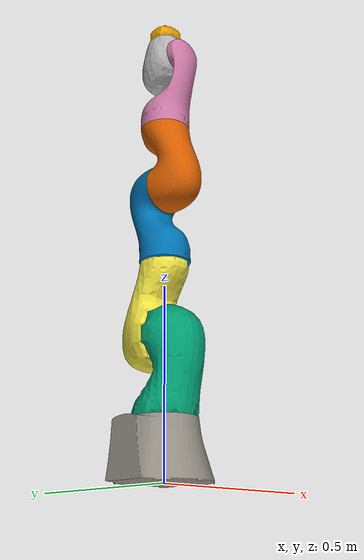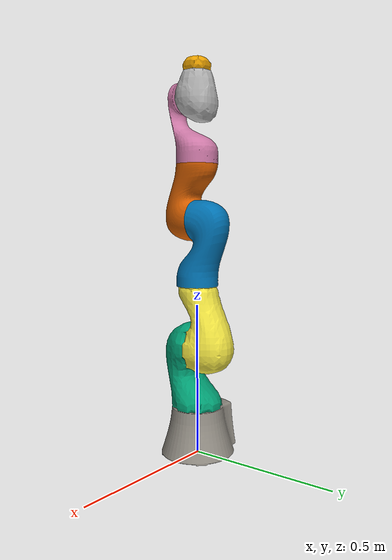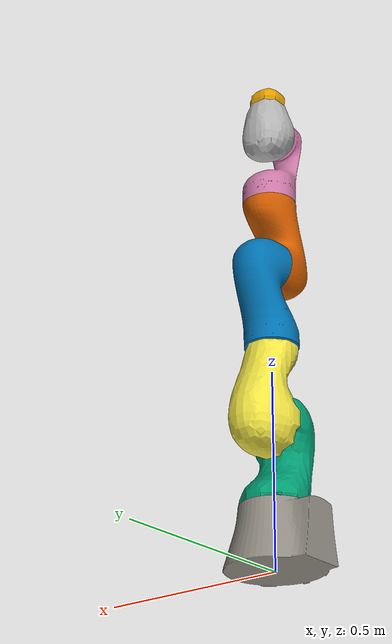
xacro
<?xml version="1.0"?>
<robot xmlns:xacro="http://www.ros.org/wiki/xacro" name="lbr_iiwa14_r820">
  <!-- Import iiwa macro files  -->
  <xacro:include filename="$(find kuka_lbr_iiwa_support)/urdf/lbr_iiwa14_r820_macro.xacro"/>
  <xacro:include filename="$(find kuka_lbr_iiwa_support)/urdf/lbr_iiwa_ros2_control_macro.xacro"/>
  <!-- Read additional arguments  -->
  <xacro:arg name="controller_ip" default="0.0.0.0"/>
  <xacro:arg name="client_ip" default="0.0.0.0"/>
  <xacro:arg name="client_port" default="30200"/>
  <xacro:arg name="mode" default="hardware"/>
  <xacro:arg name="roundtrip_time" default="0"/>
  <xacro:arg name="x" default="0"/>
  <xacro:arg name="y" default="0"/>
  <xacro:arg name="z" default="0"/>
  <xacro:arg name="roll" default="0"/>
  <xacro:arg name="pitch" default="0"/>
  <xacro:arg name="yaw" default="0"/>
  <xacro:arg name="prefix" default=""/>
  <xacro:arg name="is_async" default="false"/>
  <xacro:arg name="async_thread_priority" default="69"/>
  <xacro:arg name="async_affinity" default="[]"/>
  <xacro:arg name="scheduling_policy" default="detached"/>
  <xacro:kuka_lbr_iiwa_ros2_control name="$(arg prefix)lbr_iiwa14_r820" prefix="$(arg prefix)" io_access="false" mode="$(arg mode)" roundtrip_time="$(arg roundtrip_time)" controller_ip="$(arg controller_ip)" client_ip="$(arg client_ip)" client_port="$(arg client_port)" is_async="$(arg is_async)" scheduling_policy="$(arg scheduling_policy)" async_thread_priority="$(arg async_thread_priority)" async_affinity="$(arg async_affinity)">
    <ext_axes_ros2_control_joints/>
  </xacro:kuka_lbr_iiwa_ros2_control>
  <!-- world link -->
  <link name="world"/>
  <!-- robot links, joints -->
  <xacro:kuka_lbr_iiwa14_r820_robot prefix="$(arg prefix)" package_name="kuka_lbr_iiwa_support"/>
  <!-- default world - base_link joint -->
  <joint name="$(arg prefix)world-base_link" type="fixed">
    <parent link="world"/>
    <child link="$(arg prefix)base_link"/>
    <origin xyz="$(arg x) $(arg y) $(arg z)" rpy="$(arg roll) $(arg pitch) $(arg yaw)"/>
  </joint>
</robot>

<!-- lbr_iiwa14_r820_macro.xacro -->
<robot xmlns:xacro="http://wiki.ros.org/xacro">
  <!-- include helper xacros -->
  <xacro:include filename="$(find kuka_resources)/urdf/common_materials.xacro"/>
  <xacro:macro name="kuka_lbr_iiwa14_r820_robot" params="prefix package_name">
    <!-- links - main serial chain -->
    <link name="${prefix}base_link">
      <visual>
        <geometry>
          <mesh filename="package://${package_name}/meshes/lbr_iiwa14_r820/visual/base_link.stl"/>
        </geometry>
        <origin rpy="-0.0 0.0 0.0" xyz="0.0 0.0 0.0"/>
      </visual>
      <collision>
        <origin rpy="-0.0 0.0 0.0" xyz="0.0 0.0 0.0"/>
        <geometry>
          <mesh filename="package://${package_name}/meshes/lbr_iiwa14_r820/collision/base_link.stl"/>
        </geometry>
      </collision>
    </link>
    <link name="${prefix}link_1">
      <visual>
        <geometry>
          <mesh filename="package://${package_name}/meshes/lbr_iiwa14_r820/visual/link_1.stl"/>
        </geometry>
        <origin rpy="-0.0 0.0 0.0" xyz="0.0 0.0 0.0"/>
      </visual>
      <collision>
        <origin rpy="-0.0 0.0 0.0" xyz="0.0 0.0 0.0"/>
        <geometry>
          <mesh filename="package://${package_name}/meshes/lbr_iiwa14_r820/collision/link_1.stl"/>
        </geometry>
      </collision>
    </link>
    <link name="${prefix}link_2">
      <visual>
        <geometry>
          <mesh filename="package://${package_name}/meshes/lbr_iiwa14_r820/visual/link_2.stl"/>
        </geometry>
        <origin rpy="-0.0 0.0 0.0" xyz="0.0 0.0 0.0"/>
      </visual>
      <collision>
        <origin rpy="-0.0 0.0 0.0" xyz="0.0 0.0 0.0"/>
        <geometry>
          <mesh filename="package://${package_name}/meshes/lbr_iiwa14_r820/collision/link_2.stl"/>
        </geometry>
      </collision>
    </link>
    <link name="${prefix}link_3">
      <visual>
        <geometry>
          <mesh filename="package://${package_name}/meshes/lbr_iiwa14_r820/visual/link_3.stl"/>
        </geometry>
        <origin rpy="-0.0 0.0 0.0" xyz="0.0 0.0 0.0"/>
      </visual>
      <collision>
        <origin rpy="-0.0 0.0 0.0" xyz="0.0 0.0 0.0"/>
        <geometry>
          <mesh filename="package://${package_name}/meshes/lbr_iiwa14_r820/collision/link_3.stl"/>
        </geometry>
      </collision>
    </link>
    <link name="${prefix}link_4">
      <visual>
        <geometry>
          <mesh filename="package://${package_name}/meshes/lbr_iiwa14_r820/visual/link_4.stl"/>
        </geometry>
        <origin rpy="-0.0 0.0 0.0" xyz="0.0 0.0 0.0"/>
      </visual>
      <collision>
        <origin rpy="-0.0 0.0 0.0" xyz="0.0 0.0 0.0"/>
        <geometry>
          <mesh filename="package://${package_name}/meshes/lbr_iiwa14_r820/collision/link_4.stl"/>
        </geometry>
      </collision>
    </link>
    <link name="${prefix}link_5">
      <visual>
        <geometry>
          <mesh filename="package://${package_name}/meshes/lbr_iiwa14_r820/visual/link_5.stl"/>
        </geometry>
        <origin rpy="-0.0 0.0 0.0" xyz="0.0 0.0 0.0"/>
      </visual>
      <collision>
        <origin rpy="-0.0 0.0 0.0" xyz="0.0 0.0 0.0"/>
        <geometry>
          <mesh filename="package://${package_name}/meshes/lbr_iiwa14_r820/collision/link_5.stl"/>
        </geometry>
      </collision>
    </link>
    <link name="${prefix}link_6">
      <visual>
        <geometry>
          <mesh filename="package://${package_name}/meshes/lbr_iiwa14_r820/visual/link_6.stl"/>
        </geometry>
        <origin rpy="-0.0 0.0 0.0" xyz="0.0 0.0 0.0"/>
      </visual>
      <collision>
        <origin rpy="-0.0 0.0 0.0" xyz="0.0 0.0 0.0"/>
        <geometry>
          <mesh filename="package://${package_name}/meshes/lbr_iiwa14_r820/collision/link_6.stl"/>
        </geometry>
      </collision>
    </link>
    <link name="${prefix}link_7">
      <visual>
        <geometry>
          <mesh filename="package://${package_name}/meshes/lbr_iiwa14_r820/visual/link_7.stl"/>
        </geometry>
        <origin rpy="-0.0 0.0 0.0" xyz="0.0 0.0 0.0"/>
      </visual>
      <collision>
        <origin rpy="-0.0 0.0 0.0" xyz="0.0 0.0 0.0"/>
        <geometry>
          <mesh filename="package://${package_name}/meshes/lbr_iiwa14_r820/collision/link_7.stl"/>
        </geometry>
      </collision>
    </link>
    <!-- joints - main serial chain -->
    <joint name="${prefix}joint_1" type="revolute">
      <parent link="${prefix}base_link"/>
      <child link="${prefix}link_1"/>
      <origin rpy="-0.0 0.0 0.0" xyz="0.0 0.0 0.1575"/>
      <axis xyz="0.0 0.0 1.0"/>
      <limit effort="0" lower="${radians(-170)}" upper="${radians(170)}" velocity="${radians(85)}"/>
    </joint>
    <joint name="${prefix}joint_2" type="revolute">
      <parent link="${prefix}link_1"/>
      <child link="${prefix}link_2"/>
      <origin rpy="-0.0 0.0 0.0" xyz="0.0 0.0 0.2025"/>
      <axis xyz="0.0 1.0 0.0"/>
      <limit effort="0" lower="${radians(-120)}" upper="${radians(120)}" velocity="${radians(85)}"/>
    </joint>
    <joint name="${prefix}joint_3" type="revolute">
      <parent link="${prefix}link_2"/>
      <child link="${prefix}link_3"/>
      <origin rpy="-0.0 0.0 0.0" xyz="0.0 0.0 0.2045"/>
      <axis xyz="0.0 0.0 1.0"/>
      <limit effort="0" lower="${radians(-170)}" upper="${radians(170)}" velocity="${radians(100)}"/>
    </joint>
    <joint name="${prefix}joint_4" type="revolute">
      <parent link="${prefix}link_3"/>
      <child link="${prefix}link_4"/>
      <origin rpy="-0.0 0.0 0.0" xyz="0.0 0.0 0.2155"/>
      <axis xyz="0.0 -1.0 0.0"/>
      <limit effort="0" lower="${radians(-120)}" upper="${radians(120)}" velocity="${radians(75)}"/>
    </joint>
    <joint name="${prefix}joint_5" type="revolute">
      <parent link="${prefix}link_4"/>
      <child link="${prefix}link_5"/>
      <origin rpy="-0.0 0.0 0.0" xyz="0.0 0.0 0.1845"/>
      <axis xyz="0.0 0.0 1.0"/>
      <limit effort="0" lower="${radians(-170)}" upper="${radians(170)}" velocity="${radians(130)}"/>
    </joint>
    <joint name="${prefix}joint_6" type="revolute">
      <parent link="${prefix}link_5"/>
      <child link="${prefix}link_6"/>
      <origin rpy="-0.0 0.0 0.0" xyz="0.0 0.0 0.2155"/>
      <axis xyz="0.0 1.0 0.0"/>
      <limit effort="0" lower="${radians(-120)}" upper="${radians(120)}" velocity="${radians(135)}"/>
    </joint>
    <joint name="${prefix}joint_7" type="revolute">
      <parent link="${prefix}link_6"/>
      <child link="${prefix}link_7"/>
      <origin rpy="-0.0 0.0 0.0" xyz="0.0 0.0 0.081"/>
      <axis xyz="0.0 0.0 1.0"/>
      <limit effort="0" lower="${radians(-175)}" upper="${radians(175)}" velocity="${radians(135)}"/>
    </joint>
    <!-- ROS-Industrial 'base' frame - equivalent of 'KUKA ROBROOT'-->
    <link name="${prefix}base"/>
    <joint name="${prefix}base_link-base" type="fixed">
      <origin xyz="0 0 0" rpy="0 0 0"/>
      <parent link="${prefix}base_link"/>
      <child link="${prefix}base"/>
    </joint>
    <!-- ROS-Industrial 'flange' frame - attachment point for EEF models -->
    <link name="${prefix}flange"/>
    <joint name="${prefix}link7-flange" type="fixed">
      <parent link="${prefix}link_7"/>
      <child link="${prefix}flange"/>
      <origin rpy="-0.0 0.0 0.0" xyz="0.0 0.0 0.071"/>
    </joint>
    <!-- ROS-Industrial 'tool0' frame - all-zeros tool frame -->
    <link name="${prefix}tool0"/>
    <joint name="${prefix}link7-tool0" type="fixed">
      <parent link="${prefix}link_7"/>
      <child link="${prefix}tool0"/>
      <origin rpy="-0.0 0.0 0.0" xyz="0.0 0.0 0.071"/>
    </joint>
  </xacro:macro>
</robot>
